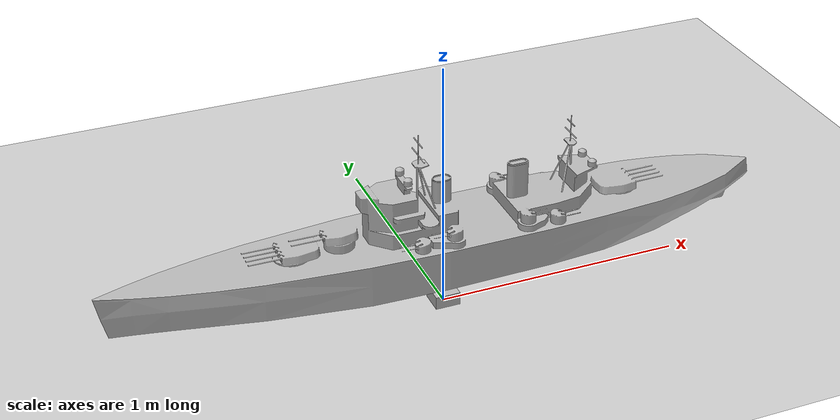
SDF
<?xml version="1.0" ?>

<sdf version="1.6">
  <world name="default">
    <gui>
      <camera name="user_camera">
        <pose>0 5 1 0 0.2 -1.5707</pose>
      </camera>
      <plugin name="keyboard" filename="libKeyboardGUIPlugin.so"/>
    </gui>
    <physics type="ode">
      <ode>
        <solver>
          <type>quick</type>
          <iters>100</iters>
          <sor>1.0</sor>
        </solver>
        <constraints>
          <cfm>0.0</cfm>
          <erp>0.2</erp>
          <contact_max_correcting_vel>0.1</contact_max_correcting_vel>
          <contact_surface_layer>0.0</contact_surface_layer>
        </constraints>
      </ode>
      <real_time_update_rate>400</real_time_update_rate>
      <max_step_size>0.0025</max_step_size>
    </physics>

    <include>
      <uri>model://sun</uri>
      <pose>0 0 0 -0.523598776 0 0</pose>
    </include>

    <model name="ground_plane">
      <static>true</static>
      <link name="link">
        <collision name="collision">
          <geometry>
            <plane>
              <normal>0 0 1</normal>
              <size>5000 5000</size>
            </plane>
          </geometry>
          <surface>
            <friction>
              <ode>
                <mu>1</mu>
                <mu2>1</mu2>
              </ode>
            </friction>
          </surface>
        </collision>
        <visual name="runway">
          <pose>000 0 0.005 0 0 -1.5707</pose>
          <cast_shadows>false</cast_shadows>
          <geometry>
            <plane>
              <normal>0 0 1</normal>
              <size>1829 45</size>
            </plane>
          </geometry>
          <material>
            <script>
              <uri>file://media/materials/scripts/gazebo.material</uri>
              <name>Gazebo/Runway</name>
            </script>
          </material>
        </visual>

        <visual name="grass">
          <pose>0 0 -0.1 0 0 0</pose>
          <cast_shadows>false</cast_shadows>
          <geometry>
            <plane>
              <normal>0 0 1</normal>
              <size>5000 5000</size>
            </plane>
          </geometry>
          <material>
            <script>
              <uri>file://media/materials/scripts/gazebo.material</uri>
              <name>Gazebo/Grass</name>
            </script>
          </material>
        </visual>

      </link>
    </model>

    <model name="target_object">
      <pose>0 0 0.2 0 0 0</pose>
      <include>
        <uri>model://battleship</uri>
        <pose>0 0 0 0 0 0</pose>
      </include>
    </model>
    <model name="camera">
      <static>true</static>
      <link name="link">
        <inertial>
          <mass>0.1</mass>
          <inertia>
            <ixx>0.1</ixx>
            <iyy>0.1</iyy>
            <izz>0.1</izz>
            <ixy>0</ixy>
            <ixz>0</ixz>
            <iyz>0</iyz>
          </inertia>
        </inertial>
        <visual name="visual">
          <geometry>
            <box>
              <size>0.1 0.1 0.1</size>
            </box>
          </geometry>
        </visual>
        <sensor name="camera" type="camera">
          <update_rate>60</update_rate>
          <camera>
            <image>
              <width>1920</width>
              <height>1080</height>
              <format>R8G8B8</format>
            </image>
            <clip>
              <near>0.2</near>
              <far>1000</far>
            </clip>
            <horizontal_fov>1.04719755</horizontal_fov>
            <pose>0 0 0 0 0 0</pose>
          </camera>
          <plugin name="camera_controller" filename="libgazebo_ros_camera.so">
            <alwaysOn>true</alwaysOn>
            <updateRate>30.0</updateRate>
            <cameraName>camera</cameraName>
            <imageTopicName>/camera/image_raw</imageTopicName>
            <cameraInfoTopicName>/camera/camera_info</cameraInfoTopicName>
            <frameName>camera_frame</frameName>
          </plugin>
        </sensor>
      </link>
    </model>
  </world>
</sdf>

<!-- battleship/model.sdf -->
<sdf version="1.6">
  <model name="battleship">
    <pose>0 0 0 0 0 0</pose>

    <link name="body">
      <inertial>
        <pose>0 -0.12 0 0 0 0</pose>
        <mass>1.5</mass>
        <inertia>
          <ixx>0.083137104</ixx>
          <ixy>0</ixy>
          <iyy>0.387382402</iyy>
          <ixz>0</ixz>
          <iyz>0</iyz>
          <izz>0.469845106</izz>
        </inertia>
      </inertial>
      <visual name="visual">
        <geometry>
          <mesh>
            <uri>model://battleship/meshes/14083_WWII_ship_UK_King_George_V_Class_Battleship_v1_L1.dae</uri>
          </mesh>
        </geometry>
      </visual>
      <collision name="body_collision">
        <geometry>
          <mesh>
            <uri>model://battleship/meshes/14083_WWII_ship_UK_King_George_V_Class_Battleship_v1_L1.dae</uri>
          </mesh>
        </geometry>
      </collision>
      </link>
  </model>
</sdf>
